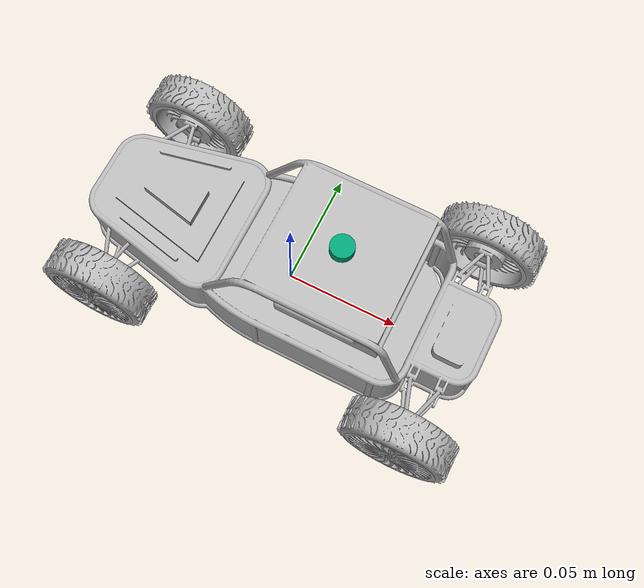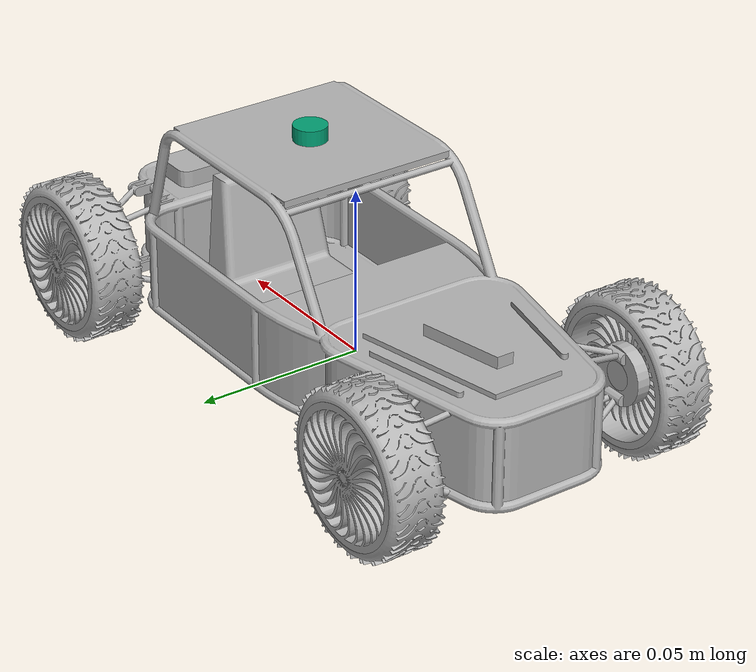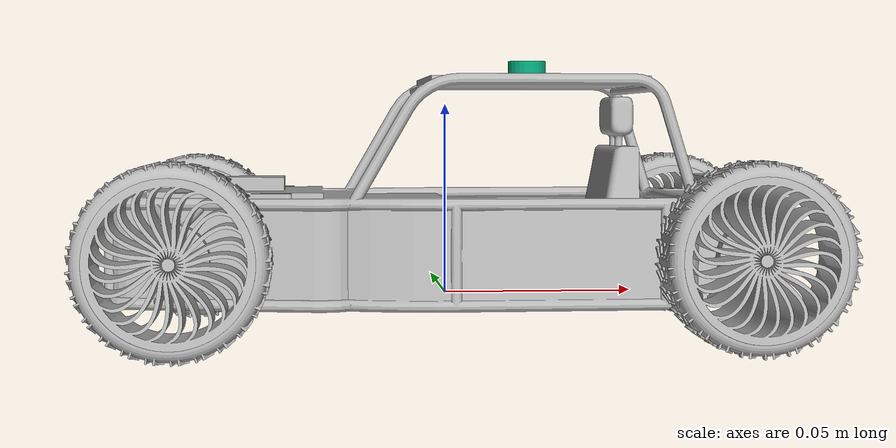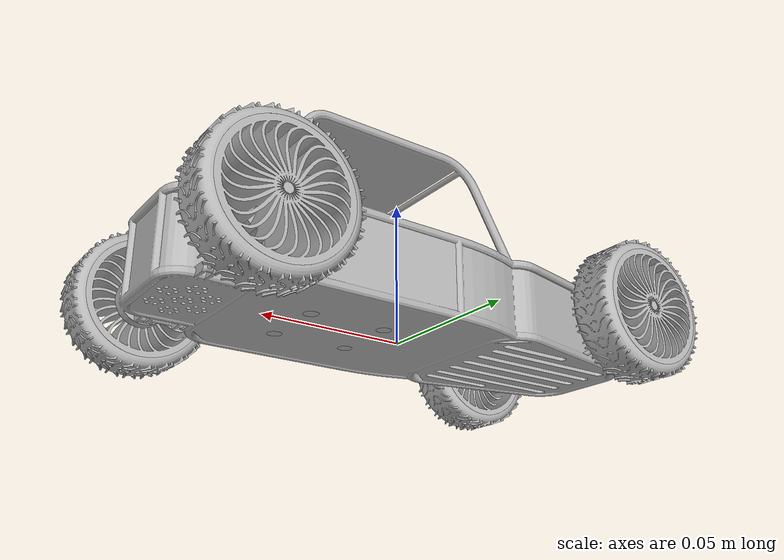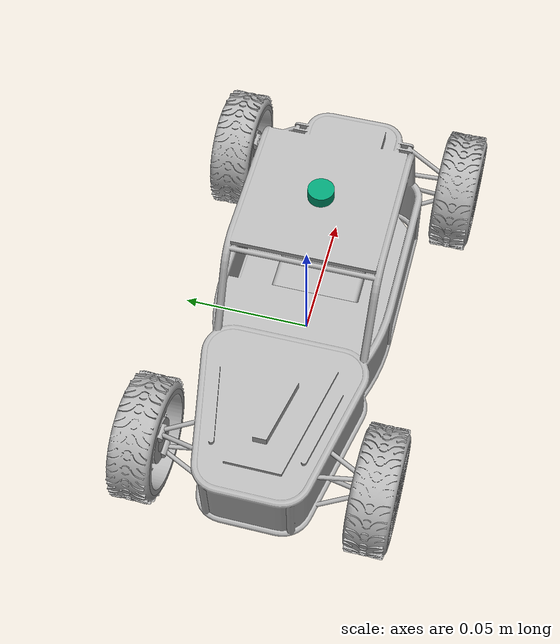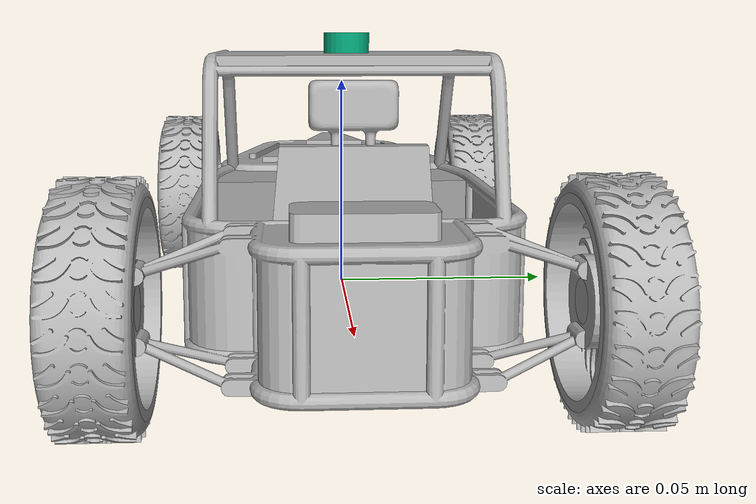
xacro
<?xml version="1.0" ?>
<robot name="ddr_bot" xmlns:xacro="http://www.ros.org/wiki/xacro">

<xacro:include filename="$(find ddr_bot_description)/urdf/materials.xacro" />
<xacro:include filename="$(find ddr_bot_description)/urdf/ddr_bot.trans" />
<xacro:include filename="$(find ddr_bot_description)/urdf/ddr_bot.gazebo" />
<link name="base_link">
  <inertial>
    <origin xyz="-0.0014308875090929254 2.4480428791933076e-07 0.016273011132728474" rpy="0 0 0"/>
    <mass value="0.08531817335201346"/>
    <inertia ixx="5.7e-05" iyy="0.00018" izz="0.000193" ixy="-0.0" iyz="0.0" ixz="-5e-06"/>
  </inertial>
  <visual>
    <origin xyz="0 0 0" rpy="0 0 0"/>
    <geometry>
      <mesh filename="file://$(find ddr_bot_description)/meshes/base_link.stl" scale="0.001 0.001 0.001"/>
    </geometry>
    <material name="silver"/>
  </visual>
  <collision>
    <origin xyz="0 0 0" rpy="0 0 0"/>
    <geometry>
      <mesh filename="file://$(find ddr_bot_description)/meshes/base_link.stl" scale="0.001 0.001 0.001"/>
    </geometry>
  </collision>
</link>

<link name="seat_1">
  <inertial>
    <origin xyz="-0.0040427285685066955 0.011280858541236163 0.01684430079942264" rpy="0 0 0"/>
    <mass value="0.019495073850443974"/>
    <inertia ixx="5e-06" iyy="7e-06" izz="6e-06" ixy="-0.0" iyz="-0.0" ixz="-2e-06"/>
  </inertial>
  <visual>
    <origin xyz="-0.039375 0.011464 0.001" rpy="0 0 0"/>
    <geometry>
      <mesh filename="file://$(find ddr_bot_description)/meshes/seat_1.stl" scale="0.001 0.001 0.001"/>
    </geometry>
    <material name="silver"/>
  </visual>
  <collision>
    <origin xyz="-0.039375 0.011464 0.001" rpy="0 0 0"/>
    <geometry>
      <mesh filename="file://$(find ddr_bot_description)/meshes/seat_1.stl" scale="0.001 0.001 0.001"/>
    </geometry>
  </collision>
</link>

<link name="left_back_wheel_rim_1">
  <inertial>
    <origin xyz="-9.210695581240991e-08 -0.007360578683035066 -3.6499785336513435e-08" rpy="0 0 0"/>
    <mass value="0.008437339304302348"/>
    <inertia ixx="1e-06" iyy="2e-06" izz="1e-06" ixy="-0.0" iyz="-0.0" ixz="0.0"/>
  </inertial>
  <visual>
    <origin xyz="-0.071718 0.040475 -0.0125" rpy="0 0 0"/>
    <geometry>
      <mesh filename="file://$(find ddr_bot_description)/meshes/left_back_wheel_rim_1.stl" scale="0.001 0.001 0.001"/>
    </geometry>
    <material name="silver"/>
  </visual>
  <collision>
    <origin xyz="-0.071718 0.040475 -0.0125" rpy="0 0 0"/>
    <geometry>
      <mesh filename="file://$(find ddr_bot_description)/meshes/left_back_wheel_rim_1.stl" scale="0.001 0.001 0.001"/>
    </geometry>
  </collision>
</link>

<link name="right_back_wheel_rim_1">
  <inertial>
    <origin xyz="9.21069558262877e-08 0.007360578683035066 -3.6499785336513435e-08" rpy="0 0 0"/>
    <mass value="0.008437339304302348"/>
    <inertia ixx="1e-06" iyy="2e-06" izz="1e-06" ixy="-0.0" iyz="0.0" ixz="-0.0"/>
  </inertial>
  <visual>
    <origin xyz="-0.071718 -0.040475 -0.0125" rpy="0 0 0"/>
    <geometry>
      <mesh filename="file://$(find ddr_bot_description)/meshes/right_back_wheel_rim_1.stl" scale="0.001 0.001 0.001"/>
    </geometry>
    <material name="silver"/>
  </visual>
  <collision>
    <origin xyz="-0.071718 -0.040475 -0.0125" rpy="0 0 0"/>
    <geometry>
      <mesh filename="file://$(find ddr_bot_description)/meshes/right_back_wheel_rim_1.stl" scale="0.001 0.001 0.001"/>
    </geometry>
  </collision>
</link>

<link name="left_front_wheel_rim_1">
  <inertial>
    <origin xyz="-9.210695581240991e-08 -0.007360578683035066 -3.6499785336513435e-08" rpy="0 0 0"/>
    <mass value="0.008437339304302348"/>
    <inertia ixx="1e-06" iyy="2e-06" izz="1e-06" ixy="-0.0" iyz="-0.0" ixz="0.0"/>
  </inertial>
  <visual>
    <origin xyz="0.068282 0.037475 -0.0125" rpy="0 0 0"/>
    <geometry>
      <mesh filename="file://$(find ddr_bot_description)/meshes/left_front_wheel_rim_1.stl" scale="0.001 0.001 0.001"/>
    </geometry>
    <material name="silver"/>
  </visual>
  <collision>
    <origin xyz="0.068282 0.037475 -0.0125" rpy="0 0 0"/>
    <geometry>
      <mesh filename="file://$(find ddr_bot_description)/meshes/left_front_wheel_rim_1.stl" scale="0.001 0.001 0.001"/>
    </geometry>
  </collision>
</link>

<link name="right_front_wheel_rim_1">
  <inertial>
    <origin xyz="9.21069558262877e-08 0.007360578683035066 -3.6499785336513435e-08" rpy="0 0 0"/>
    <mass value="0.008437339304302348"/>
    <inertia ixx="1e-06" iyy="2e-06" izz="1e-06" ixy="-0.0" iyz="0.0" ixz="-0.0"/>
  </inertial>
  <visual>
    <origin xyz="0.068282 -0.037475 -0.0125" rpy="0 0 0"/>
    <geometry>
      <mesh filename="file://$(find ddr_bot_description)/meshes/right_front_wheel_rim_1.stl" scale="0.001 0.001 0.001"/>
    </geometry>
    <material name="silver"/>
  </visual>
  <collision>
    <origin xyz="0.068282 -0.037475 -0.0125" rpy="0 0 0"/>
    <geometry>
      <mesh filename="file://$(find ddr_bot_description)/meshes/right_front_wheel_rim_1.stl" scale="0.001 0.001 0.001"/>
    </geometry>
  </collision>
</link>

<link name="left_back_wheel_tyre_1">
  <inertial>
    <origin xyz="-7.916602472179957e-08 0.008000005616797805 1.1114340360898756e-07" rpy="0 0 0"/>
    <mass value="0.005759648563169874"/>
    <inertia ixx="1e-06" iyy="3e-06" izz="1e-06" ixy="0.0" iyz="-0.0" ixz="0.0"/>
  </inertial>
  <visual>
    <origin xyz="-0.071718 0.054475 -0.0125" rpy="0 0 0"/>
    <geometry>
      <mesh filename="file://$(find ddr_bot_description)/meshes/left_back_wheel_tyre_1.stl" scale="0.001 0.001 0.001"/>
    </geometry>
    <material name="silver"/>
  </visual>
  <collision>
    <origin xyz="-0.071718 0.054475 -0.0125" rpy="0 0 0"/>
    <geometry>
      <mesh filename="file://$(find ddr_bot_description)/meshes/left_back_wheel_tyre_1.stl" scale="0.001 0.001 0.001"/>
    </geometry>
  </collision>
</link>

<link name="left_front_wheel_tyre_1">
  <inertial>
    <origin xyz="-7.916602472179957e-08 0.008000005616797798 1.1114340360898756e-07" rpy="0 0 0"/>
    <mass value="0.005759648563169874"/>
    <inertia ixx="1e-06" iyy="3e-06" izz="1e-06" ixy="0.0" iyz="-0.0" ixz="0.0"/>
  </inertial>
  <visual>
    <origin xyz="0.068282 0.051475 -0.0125" rpy="0 0 0"/>
    <geometry>
      <mesh filename="file://$(find ddr_bot_description)/meshes/left_front_wheel_tyre_1.stl" scale="0.001 0.001 0.001"/>
    </geometry>
    <material name="silver"/>
  </visual>
  <collision>
    <origin xyz="0.068282 0.051475 -0.0125" rpy="0 0 0"/>
    <geometry>
      <mesh filename="file://$(find ddr_bot_description)/meshes/left_front_wheel_tyre_1.stl" scale="0.001 0.001 0.001"/>
    </geometry>
  </collision>
</link>

<link name="right_back_wheel_tyre_1">
  <inertial>
    <origin xyz="7.916602473567735e-08 -0.008000005616797805 1.1114340360898756e-07" rpy="0 0 0"/>
    <mass value="0.005759648563169874"/>
    <inertia ixx="1e-06" iyy="3e-06" izz="1e-06" ixy="0.0" iyz="0.0" ixz="-0.0"/>
  </inertial>
  <visual>
    <origin xyz="-0.071718 -0.054475 -0.0125" rpy="0 0 0"/>
    <geometry>
      <mesh filename="file://$(find ddr_bot_description)/meshes/right_back_wheel_tyre_1.stl" scale="0.001 0.001 0.001"/>
    </geometry>
    <material name="silver"/>
  </visual>
  <collision>
    <origin xyz="-0.071718 -0.054475 -0.0125" rpy="0 0 0"/>
    <geometry>
      <mesh filename="file://$(find ddr_bot_description)/meshes/right_back_wheel_tyre_1.stl" scale="0.001 0.001 0.001"/>
    </geometry>
  </collision>
</link>

<link name="right_front_wheel_tyre_1">
  <inertial>
    <origin xyz="7.916602473567735e-08 -0.008000005616797798 1.1114340360898756e-07" rpy="0 0 0"/>
    <mass value="0.005759648563169874"/>
    <inertia ixx="1e-06" iyy="3e-06" izz="1e-06" ixy="0.0" iyz="0.0" ixz="-0.0"/>
  </inertial>
  <visual>
    <origin xyz="0.068282 -0.051475 -0.0125" rpy="0 0 0"/>
    <geometry>
      <mesh filename="file://$(find ddr_bot_description)/meshes/right_front_wheel_tyre_1.stl" scale="0.001 0.001 0.001"/>
    </geometry>
    <material name="silver"/>
  </visual>
  <collision>
    <origin xyz="0.068282 -0.051475 -0.0125" rpy="0 0 0"/>
    <geometry>
      <mesh filename="file://$(find ddr_bot_description)/meshes/right_front_wheel_tyre_1.stl" scale="0.001 0.001 0.001"/>
    </geometry>
  </collision>
</link>

<link name="lidar_link">
  <collision>
    <origin xyz="0 0 0" rpy="0 0 0"/>
    <geometry>
       <cylinder radius="0.0005" length="0.005"/>
    </geometry>
  </collision>

  <visual>
    <origin xyz="0 0 0" rpy="0 0 0"/>
    <geometry>
       <cylinder radius="0.005" length="0.005"/>
    </geometry>
  </visual>
</link>

<joint name="lidar_joint" type="fixed">
  <origin xyz="0.022 0 0.059" rpy="0 0 0"/>
  <parent link="base_link"/>
  <child link="lidar_link"/>
</joint>

<joint name="seat_fix" type="fixed">
  <origin xyz="0.039375 -0.011464 -0.001" rpy="0 0 0"/>
  <parent link="base_link"/>
  <child link="seat_1"/>
</joint>

<joint name="left_back_wheel_joint" type="continuous">
  <origin xyz="0.071718 -0.040475 0.0125" rpy="0 0 0"/>
  <parent link="base_link"/>
  <child link="left_back_wheel_rim_1"/>
  <axis xyz="0.0 -1.0 0.0"/>
</joint>

<joint name="right_back_wheel_joint" type="continuous">
  <origin xyz="0.071718 0.040475 0.0125" rpy="0 0 0"/>
  <parent link="base_link"/>
  <child link="right_back_wheel_rim_1"/>
  <axis xyz="0.0 -1.0 0.0"/>
</joint>

<joint name="left_front_wheel_joint" type="continuous">
  <origin xyz="-0.068282 -0.037475 0.0125" rpy="0 0 0"/>
  <parent link="base_link"/>
  <child link="left_front_wheel_rim_1"/>
  <axis xyz="0.0 -1.0 0.0"/>
</joint>

<joint name="right_front_wheel_joint" type="continuous">
  <origin xyz="-0.068282 0.037475 0.0125" rpy="0 0 0"/>
  <parent link="base_link"/>
  <child link="right_front_wheel_rim_1"/>
  <axis xyz="0.0 -1.0 0.0"/>
</joint>

<joint name="left_back_tyre_fix" type="fixed">
  <origin xyz="0.0 -0.014 0.0" rpy="0 0 0"/>
  <parent link="left_back_wheel_rim_1"/>
  <child link="left_back_wheel_tyre_1"/>
</joint>

<joint name="left_front_tyre_fix" type="fixed">
  <origin xyz="0.0 -0.014 0.0" rpy="0 0 0"/>
  <parent link="left_front_wheel_rim_1"/>
  <child link="left_front_wheel_tyre_1"/>
</joint>

<joint name="right_back_tyre_fix" type="fixed">
  <origin xyz="0.0 0.014 0.0" rpy="0 0 0"/>
  <parent link="right_back_wheel_rim_1"/>
  <child link="right_back_wheel_tyre_1"/>
</joint>

<joint name="right_front_tyre_fix" type="fixed">
  <origin xyz="0.0 0.014 0.0" rpy="0 0 0"/>
  <parent link="right_front_wheel_rim_1"/>
  <child link="right_front_wheel_tyre_1"/>
</joint>

</robot>

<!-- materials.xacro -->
<robot name="ddr_bot" xmlns:xacro="http://www.ros.org/wiki/xacro" >

<material name="silver">
  <color rgba="0.700 0.700 0.700 1.000"/>
</material>

</robot>

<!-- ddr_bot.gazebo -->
<robot name="ddr_bot" xmlns:xacro="http://www.ros.org/wiki/xacro" >

<xacro:property name="body_color" value="Gazebo/Red" />
<xacro:property name="green_color" value="Gazebo/Green" />
<xacro:property name="black_color" value="Gazebo/Black" />
<xacro:property name="yellow_color" value="Gazebo/Yellow" />

<gazebo>
  <plugin name="control" filename="libgazebo_ros_control.so"/>
</gazebo>

<gazebo>
  <plugin name="differential_drive_controller" filename="libgazebo_ros_diff_drive.so">
    <!-- Plugin update rate in Hz -->
    <update_rate>100</update_rate>

    <!-- Name of left joint, defaults to `left_joint` -->
    <left_joint>left_back_wheel_joint</left_joint>

    <!-- Name of right joint, defaults to `right_joint` -->
    <right_joint>right_back_wheel_joint</right_joint>

    <!-- Wheel acceleration, in rad/s^2, defaults to 0.0 rad/s^2 -->
    <max_wheel_acceleration>4.0</max_wheel_acceleration>

    <!-- Maximum torque which the wheels can produce, in Nm, defaults to 5 Nm -->
    <max_wheel_torque>20</max_wheel_torque>

    <!-- Odometry frame, defaults to `odom` -->
    <odometry_frame>odom</odometry_frame>
    <odometry_topic>odom</odometry_topic>

    <!-- Robot frame to calculate odometry from, defaults to `base_footprint` -->
    <robot_base_frame>base_link</robot_base_frame>

    <!-- Odometry source, 0 for ENCODER, 1 for WORLD, defaults to WORLD -->
    <odometry_source>1</odometry_source>

    <!-- Robot Wheel Seperation Distance in m -->

    <!-- Robot Wheel Diameter in m -->

    <!-- Set to true to publish transforms for the odometry, defaults to true -->
    <publish_odom>true</publish_odom>
    <!-- When true, publish coordinate transform from odom to base_footprint -->
    <publish_odom_tf>false</publish_odom_tf>
    <!-- When true, publish coordinate transform from base_link to the wheels -->
    <publish_wheel_tf>false</publish_wheel_tf>

    <!-- Set to true to swap right and left wheels, defaults to true -->

    <!-- Change the ROS topic we will publish the odometry data to -->
    <ros>
      <remapping>odom:=/odometry</remapping>
    </ros>
  </plugin>
</gazebo>

<gazebo reference="base_link">
    <sensor name="br_imu" type="imu">
        <always_on>true</always_on>
        <update_rate>100</update_rate>
        <imu>
          <angular_velocity>
            <x>
              <noise type="gaussian">
                <mean>0.0</mean>
                <stddev>2e-4</stddev>
              </noise>
            </x>
            <y>
              <noise type="gaussian">
                <mean>0.0</mean>
                <stddev>2e-4</stddev>
              </noise>
            </y>
            <z>
              <noise type="gaussian">
                <mean>0.0</mean>
                <stddev>2e-4</stddev>
              </noise>
            </z>
          </angular_velocity>
          <linear_acceleration>
            <x>
              <noise type="gaussian">
                <mean>0.0</mean>
                <stddev>1.7e-2</stddev>
              </noise>
            </x>
            <y>
              <noise type="gaussian">
                <mean>0.0</mean>
                <stddev>1.7e-2</stddev>
              </noise>
            </y>
            <z>
              <noise type="gaussian">
                <mean>0.0</mean>
                <stddev>1.7e-2</stddev>
              </noise>
            </z>
          </linear_acceleration>
        </imu>
        <plugin name="bytes_imu" filename="libgazebo_ros_imu_sensor.so">
            <ros>
                <namespace>imu</namespace>
                <remapping>~/out:=data</remapping>
            </ros>
            <initial_orientation_as_reference>false</initial_orientation_as_reference>
        </plugin>
    </sensor>
</gazebo>

<gazebo reference="lidar_link">
    <sensor name="lidar" type="ray">
        <always_on>true</always_on>
        <visualize>true</visualize>
        <update_rate>100</update_rate>
        <ray>
          <scan>
            <horizontal>
              <samples>360</samples>
              <resolution>1.00</resolution>
              <min_angle>0.000000</min_angle>
              <max_angle>6.280000</max_angle>
            </horizontal>
          </scan>
          <range>
            <min>0.02000</min>
            <max>2.5</max>
            <resolution>0.015</resolution>
          </range>
          <noise>
            <type>gaussian</type>
            <mean>0.0</mean>
            <stddev>0.01</stddev>
          </noise>
        </ray>
        <plugin name="scan" filename="libgazebo_ros_ray_sensor.so">
          <ros>
            <remapping>~/out:=scan</remapping>
          </ros>
          <output_type>sensor_msgs/LaserScan</output_type>
          <frame_name>lidar_link</frame_name>
        </plugin>
    </sensor>
</gazebo>

<gazebo reference="base_link">
  <material>${body_color}</material>
  <mu1>0.2</mu1>
  <mu2>0.2</mu2>
  <self_collide>true</self_collide>
  <gravity>true</gravity>
</gazebo>

<gazebo reference="seat_1">
  <material>${green_color}</material>
  <mu1>0.2</mu1>
  <mu2>0.2</mu2>
  <self_collide>true</self_collide>
</gazebo>

<gazebo reference="left_back_wheel_rim_1">
  <material>${yellow_color}</material>
  <mu1>0.2</mu1>
  <mu2>0.2</mu2>
  <self_collide>true</self_collide>
</gazebo>

<gazebo reference="right_back_wheel_rim_1">
  <material>${yellow_color}</material>
  <mu1>0.2</mu1>
  <mu2>0.2</mu2>
  <self_collide>true</self_collide>
</gazebo>

<gazebo reference="left_front_wheel_rim_1">
  <material>${yellow_color}</material>
  <mu1>0.2</mu1>
  <mu2>0.2</mu2>
  <self_collide>true</self_collide>
</gazebo>

<gazebo reference="right_front_wheel_rim_1">
  <material>${yellow_color}</material>
  <mu1>0.2</mu1>
  <mu2>0.2</mu2>
  <self_collide>true</self_collide>
</gazebo>

<gazebo reference="left_back_wheel_tyre_1">
  <material>${black_color}</material>
  <mu1>0.2</mu1>
  <mu2>0.2</mu2>
  <self_collide>true</self_collide>
</gazebo>

<gazebo reference="left_front_wheel_tyre_1">
  <material>${black_color}</material>
  <mu1>0.2</mu1>
  <mu2>0.2</mu2>
  <self_collide>true</self_collide>
</gazebo>

<gazebo reference="right_back_wheel_tyre_1">
  <material>${black_color}</material>
  <mu1>0.2</mu1>
  <mu2>0.2</mu2>
  <self_collide>true</self_collide>
</gazebo>

<gazebo reference="right_front_wheel_tyre_1">
  <material>${black_color}</material>
  <mu1>0.2</mu1>
  <mu2>0.2</mu2>
  <self_collide>true</self_collide>
</gazebo>

</robot>
